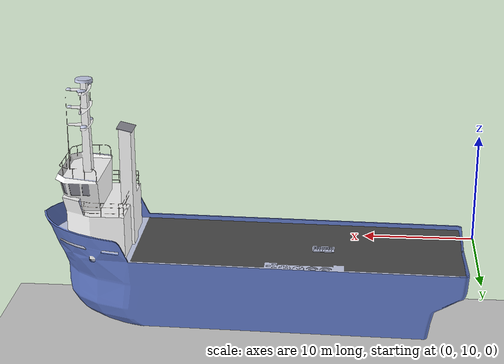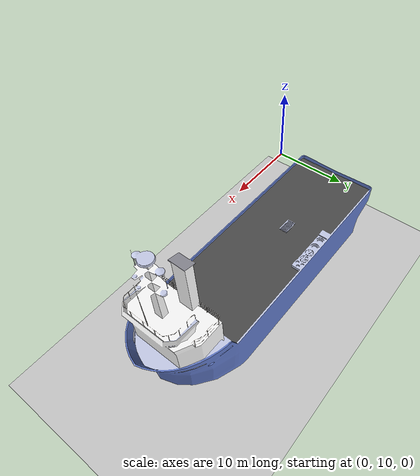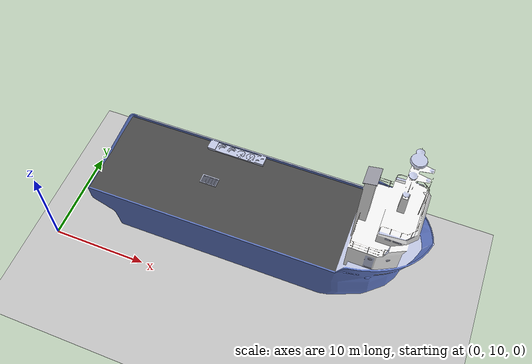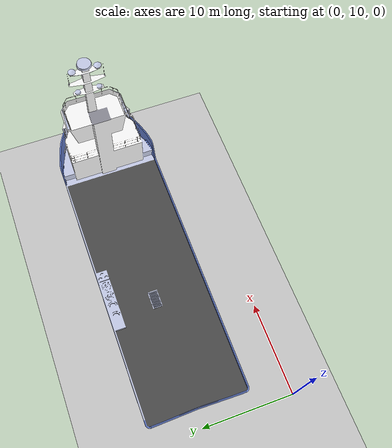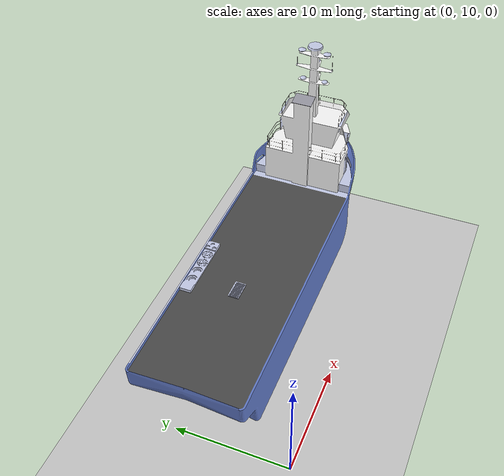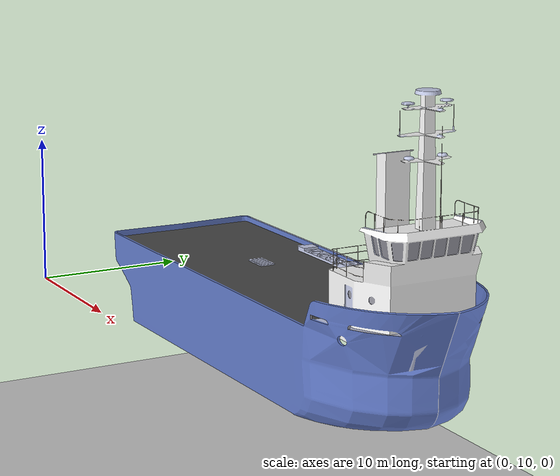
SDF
<?xml version="1.0" ?>
<sdf version="1.4">
    <world name="underwater_world">
        <gravity>0 0 -9.8</gravity>
        <scene>
            <grid>false</grid>
            <sky>
                <clouds>
                    <speed>12</speed>
                </clouds>
            </sky>
        </scene>

        <include>
            <pose>0 0 -10 0 0 0</pose>
            <uri>model://ground_plane</uri>
            <pose>0 0 -10 0 0 0</pose>
        </include>

        <include>
            <uri>model://sun</uri>
        </include>

    <model name='ship'>
      <link name='ship_base_link'>
        <pose frame=''>0 0 0 0 -0 0</pose>
        <inertial>
          <pose frame=''>0 0 0 0 -0 0</pose>
          <mass>95.78</mass>
          <inertia>
            <ixx>57.28</ixx>
            <ixy>0</ixy>
            <ixz>-0.23</ixz>
            <iyy>57.28</iyy>
            <iyz>0</iyz>
            <izz>6.09</izz>
          </inertia>
        </inertial>
        <collision name='ship_base_link_fixed_joint_lump__base_link_collision_collision'>
          <pose frame=''>0 0 5 0 -0 0</pose>
          <geometry>
            <mesh>
              <scale>0.0025 0.0025 0.0025</scale>
              <uri>/home/william/Underwater/underwater_ws/src/underwater_sim/models/meshes/ship/hull.dae</uri>
            </mesh>
          </geometry>
          <max_contacts>10</max_contacts>
          <surface>
            <contact>
              <ode/>
            </contact>
            <bounce/>
            <friction>
              <torsional>
                <ode/>
              </torsional>
              <ode/>
            </friction>
          </surface>
        </collision>
        <visual name='ship_base_link_visual'>
          <pose frame=''>0 0 0 0 -0 0</pose>
          <geometry>
            <mesh>
              <scale>0.0025 0.0025 0.0025</scale>
              <uri>/home/william/Underwater/underwater_ws/src/underwater_sim/models/meshes/ship/testShip.dae</uri>
            </mesh>
          </geometry>
        </visual>
        <self_collide>0</self_collide>
        <enable_wind>0</enable_wind>
        <kinematic>0</kinematic>
      </link>
      <pose frame=''>20 20 0 0 -0 0</pose>
    </model>

    </world>
</sdf>
